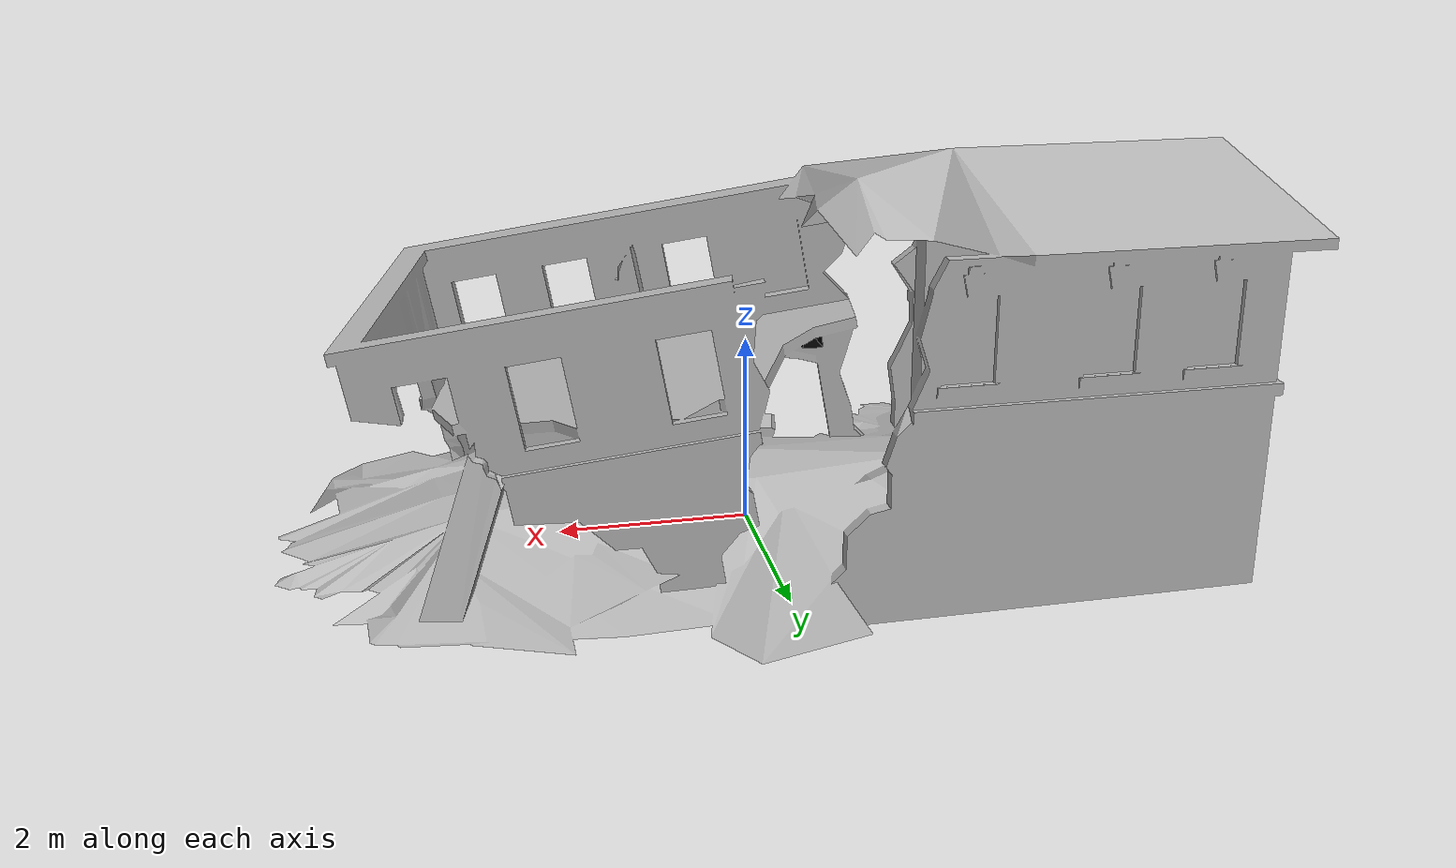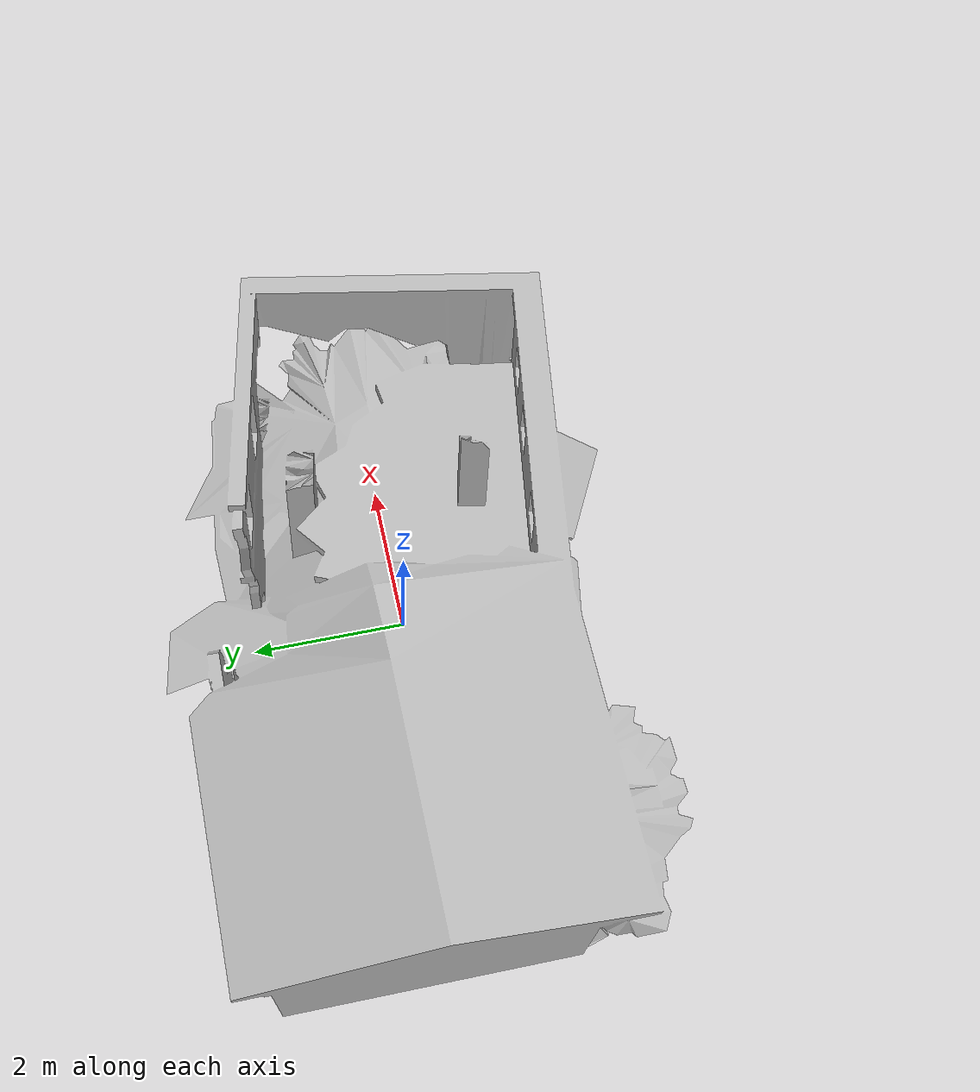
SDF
<?xml version="1.0" ?>
<sdf version="1.6">
  <model name="collapsed_fire_station">
    <static>true</static>

    <link name="link">

      <collision name="collision">
        <geometry>
          <mesh>
            <uri>model://collapsed_fire_station/meshes/collapsed_fire_station.dae</uri>
            <scale>0.35 0.35 0.35</scale>
          </mesh>
        </geometry>
      </collision>

      <visual name="visual">
        <geometry>
          <mesh>
            <uri>model://collapsed_fire_station/meshes/collapsed_fire_station.dae</uri>
            <scale>0.35 0.35 0.35</scale>
          </mesh>
        </geometry>
      </visual>

    </link>
  </model>
</sdf>
